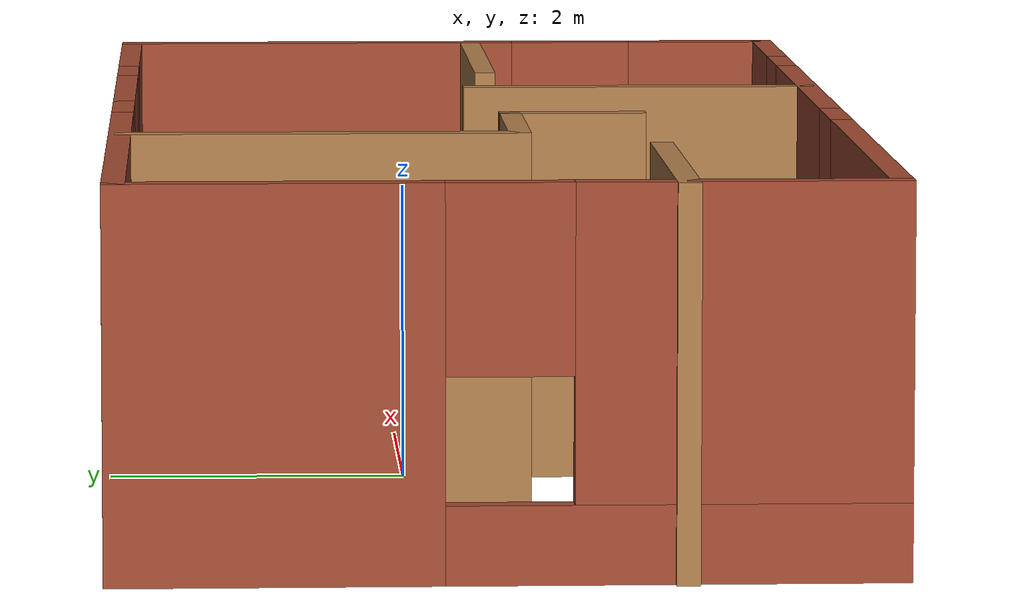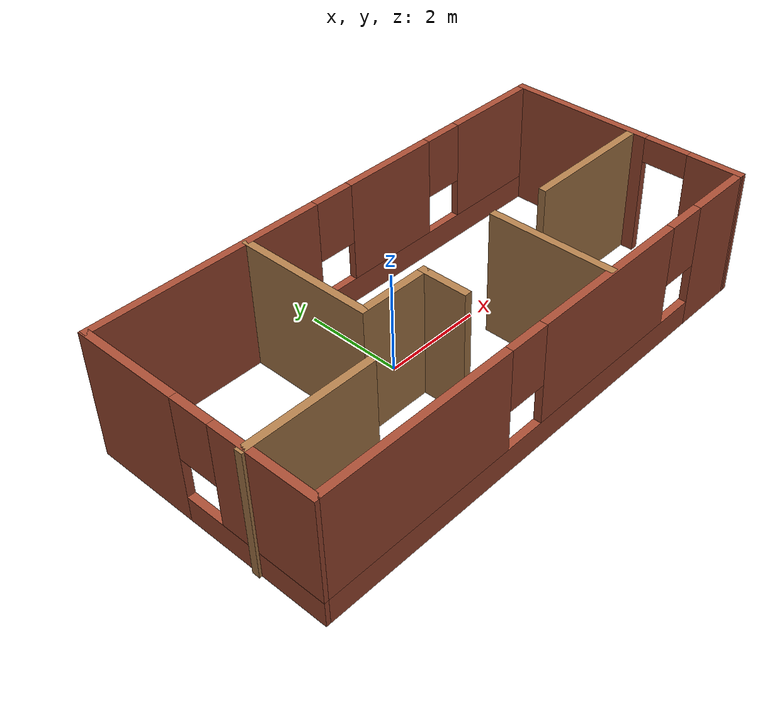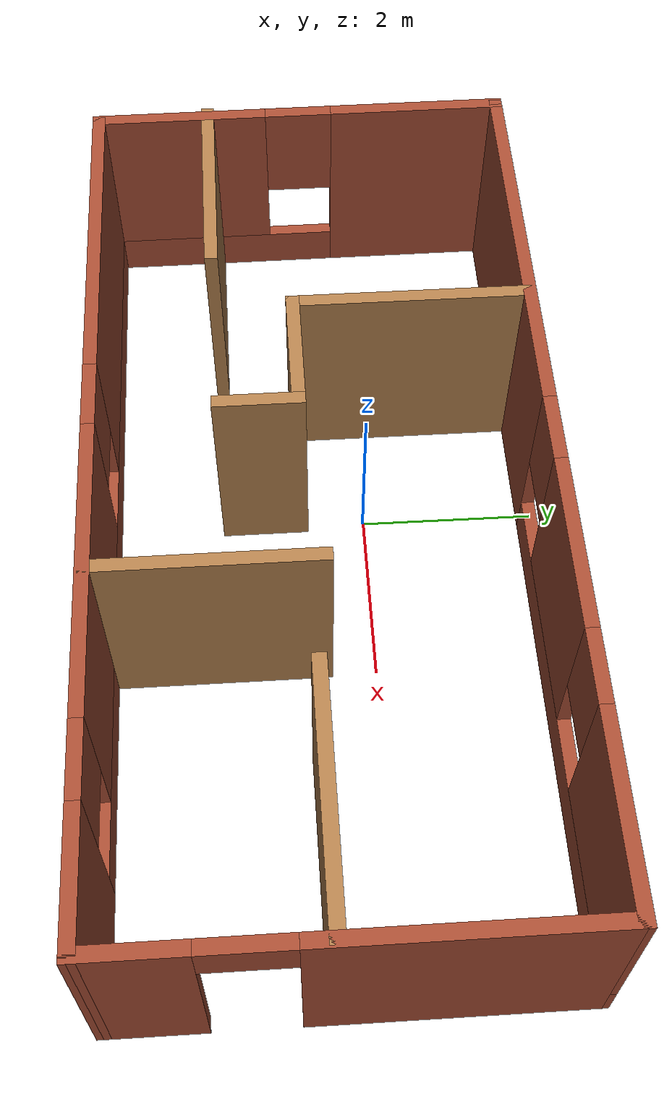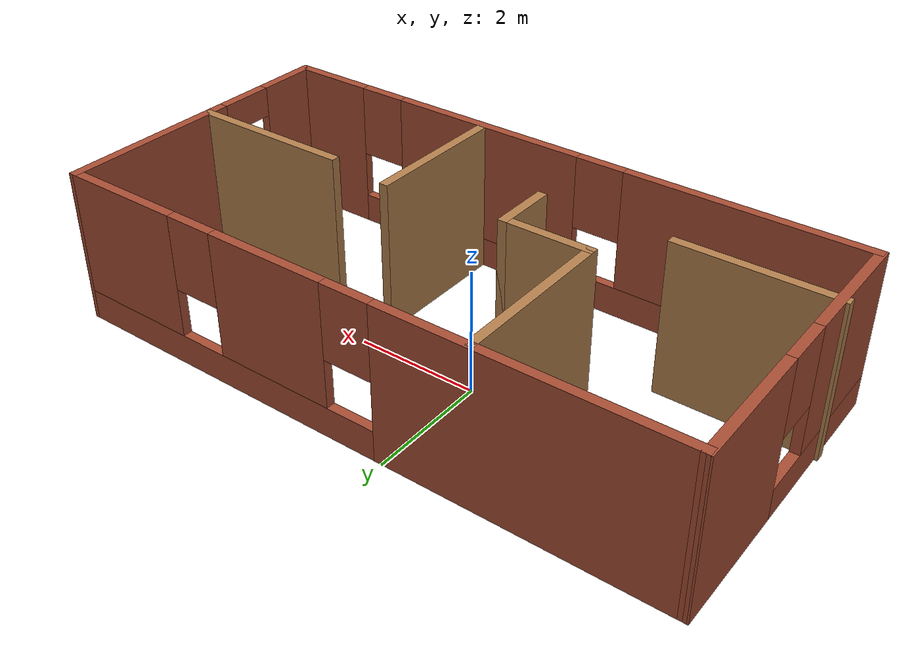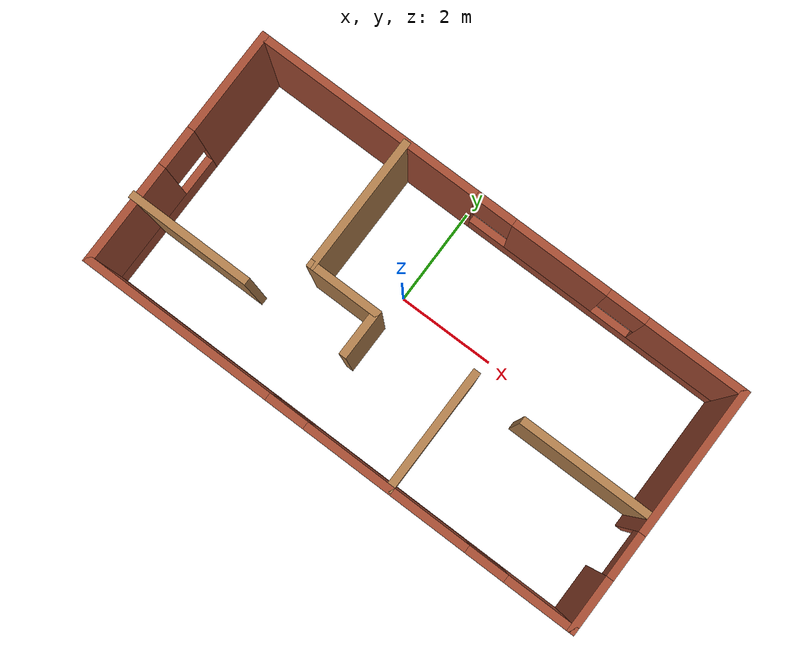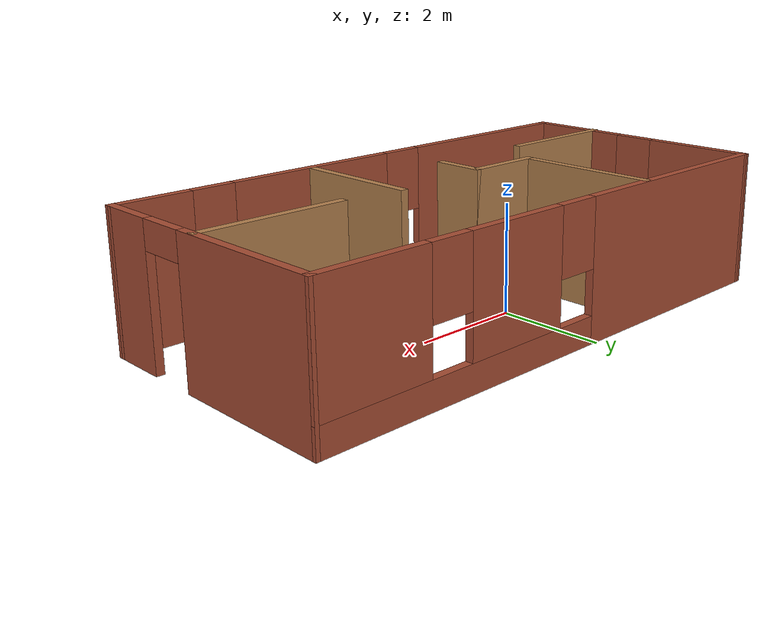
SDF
<?xml version='1.0'?>
<sdf version='1.7'>
  <model name='worlds'>
    <pose>0.621685 -0.516372 0 0 -0 0</pose>
    <link name='Wall_0'>
      <pose>-5.05689 0.005663 0 0 -0 -1.56554</pose>
      <visual name='Wall_0_Visual_0'>
        <pose>-1.44652 0 1.25 0 -0 0</pose>
        <geometry>
          <box>
            <size>2.10695 0.15 2.5</size>
          </box>
        </geometry>
        <material>
          <script>
            <uri>file://media/materials/scripts/gazebo.material</uri>
            <name>Gazebo/Bricks</name>
          </script>
          <ambient>1 1 1 1</ambient>
        </material>
        <meta>
          <layer>0</layer>
        </meta>
      </visual>
      <collision name='Wall_0_Collision_0'>
        <geometry>
          <box>
            <size>2.10695 0.15 2.5</size>
          </box>
        </geometry>
        <pose>-1.44652 0 1.25 0 -0 0</pose>
      </collision>
      <visual name='Wall_0_Visual_1'>
        <pose>1.05348 0 0.25 0 -0 0</pose>
        <geometry>
          <box>
            <size>2.89305 0.15 0.5</size>
          </box>
        </geometry>
        <material>
          <script>
            <uri>file://media/materials/scripts/gazebo.material</uri>
            <name>Gazebo/Bricks</name>
          </script>
          <ambient>1 1 1 1</ambient>
        </material>
        <meta>
          <layer>0</layer>
        </meta>
      </visual>
      <collision name='Wall_0_Collision_1'>
        <geometry>
          <box>
            <size>2.89305 0.15 0.5</size>
          </box>
        </geometry>
        <pose>1.05348 0 0.25 0 -0 0</pose>
      </collision>
      <visual name='Wall_0_Visual_2'>
        <pose>1.45348 0 1.5 0 -0 0</pose>
        <geometry>
          <box>
            <size>2.09305 0.15 2</size>
          </box>
        </geometry>
        <material>
          <script>
            <uri>file://media/materials/scripts/gazebo.material</uri>
            <name>Gazebo/Bricks</name>
          </script>
          <ambient>1 1 1 1</ambient>
        </material>
        <meta>
          <layer>0</layer>
        </meta>
      </visual>
      <collision name='Wall_0_Collision_2'>
        <geometry>
          <box>
            <size>2.09305 0.15 2</size>
          </box>
        </geometry>
        <pose>1.45348 0 1.5 0 -0 0</pose>
      </collision>
      <visual name='Wall_0_Visual_3'>
        <pose>0.006954 0 1.9 0 -0 0</pose>
        <geometry>
          <box>
            <size>0.8 0.15 1.2</size>
          </box>
        </geometry>
        <material>
          <script>
            <uri>file://media/materials/scripts/gazebo.material</uri>
            <name>Gazebo/Bricks</name>
          </script>
          <ambient>1 1 1 1</ambient>
        </material>
        <meta>
          <layer>0</layer>
        </meta>
      </visual>
      <collision name='Wall_0_Collision_3'>
        <geometry>
          <box>
            <size>0.8 0.15 1.2</size>
          </box>
        </geometry>
        <pose>0.006954 0 1.9 0 -0 0</pose>
      </collision>
    </link>
    <link name='Wall_12'>
      <collision name='Wall_12_Collision'>
        <geometry>
          <box>
            <size>2.75 0.15 2.5</size>
          </box>
        </geometry>
        <pose>0 0 1.25 0 -0 0</pose>
      </collision>
      <visual name='Wall_12_Visual'>
        <pose>0 0 1.25 0 -0 0</pose>
        <geometry>
          <box>
            <size>2.75 0.15 2.5</size>
          </box>
        </geometry>
        <material>
          <script>
            <uri>file://media/materials/scripts/gazebo.material</uri>
            <name>Gazebo/Wood</name>
          </script>
          <ambient>1 1 1 1</ambient>
        </material>
        <meta>
          <layer>0</layer>
        </meta>
      </visual>
      <pose>-1.98181 1.0858 0 0 -0 -1.5708</pose>
    </link>
    <link name='Wall_13'>
      <collision name='Wall_13_Collision'>
        <geometry>
          <box>
            <size>1.5 0.15 2.5</size>
          </box>
        </geometry>
        <pose>0 0 1.25 0 -0 0</pose>
      </collision>
      <visual name='Wall_13_Visual'>
        <pose>0 0 1.25 0 -0 0</pose>
        <geometry>
          <box>
            <size>1.5 0.15 2.5</size>
          </box>
        </geometry>
        <material>
          <script>
            <uri>file://media/materials/scripts/gazebo.material</uri>
            <name>Gazebo/Wood</name>
          </script>
          <ambient>1 1 1 1</ambient>
        </material>
        <meta>
          <layer>0</layer>
        </meta>
      </visual>
      <pose>-1.30681 -0.214205 0 0 -0 0</pose>
    </link>
    <link name='Wall_14'>
      <collision name='Wall_14_Collision'>
        <geometry>
          <box>
            <size>1 0.15 2.5</size>
          </box>
        </geometry>
        <pose>0 0 1.25 0 -0 0</pose>
      </collision>
      <visual name='Wall_14_Visual'>
        <pose>0 0 1.25 0 -0 0</pose>
        <geometry>
          <box>
            <size>1 0.15 2.5</size>
          </box>
        </geometry>
        <material>
          <script>
            <uri>file://media/materials/scripts/gazebo.material</uri>
            <name>Gazebo/Wood</name>
          </script>
          <ambient>1 1 1 1</ambient>
        </material>
        <meta>
          <layer>0</layer>
        </meta>
      </visual>
      <pose>-0.63181 -0.639205 0 0 -0 -1.5708</pose>
    </link>
    <link name='Wall_16'>
      <collision name='Wall_16_Collision'>
        <geometry>
          <box>
            <size>2.5 0.15 2.5</size>
          </box>
        </geometry>
        <pose>0 0 1.25 0 -0 0</pose>
      </collision>
      <visual name='Wall_16_Visual'>
        <pose>0 0 1.25 0 -0 0</pose>
        <geometry>
          <box>
            <size>2.5 0.15 2.5</size>
          </box>
        </geometry>
        <material>
          <script>
            <uri>file://media/materials/scripts/gazebo.material</uri>
            <name>Gazebo/Wood</name>
          </script>
          <ambient>1 1 1 1</ambient>
        </material>
        <meta>
          <layer>0</layer>
        </meta>
      </visual>
      <pose>-3.92701 -1.10149 0 0 -0 0</pose>
    </link>
    <link name='Wall_2'>
      <pose>0.02945 2.42485 0 0 -0 -0.00114</pose>
      <visual name='Wall_2_Visual_0'>
        <pose>-2.83096 0 1.25 0 -0 0</pose>
        <geometry>
          <box>
            <size>4.63303 0.15 2.5</size>
          </box>
        </geometry>
        <material>
          <script>
            <uri>file://media/materials/scripts/gazebo.material</uri>
            <name>Gazebo/Bricks</name>
          </script>
          <ambient>1 1 1 1</ambient>
        </material>
        <meta>
          <layer>0</layer>
        </meta>
      </visual>
      <collision name='Wall_2_Collision_0'>
        <geometry>
          <box>
            <size>4.63303 0.15 2.5</size>
          </box>
        </geometry>
        <pose>-2.83096 0 1.25 0 -0 0</pose>
      </collision>
      <visual name='Wall_2_Visual_1'>
        <pose>2.31652 0 0.25 0 -0 0</pose>
        <geometry>
          <box>
            <size>5.66193 0.15 0.5</size>
          </box>
        </geometry>
        <material>
          <script>
            <uri>file://media/materials/scripts/gazebo.material</uri>
            <name>Gazebo/Bricks</name>
          </script>
          <ambient>1 1 1 1</ambient>
        </material>
        <meta>
          <layer>0</layer>
        </meta>
      </visual>
      <collision name='Wall_2_Collision_1'>
        <geometry>
          <box>
            <size>5.66193 0.15 0.5</size>
          </box>
        </geometry>
        <pose>2.31652 0 0.25 0 -0 0</pose>
      </collision>
      <visual name='Wall_2_Visual_2'>
        <pose>1.27725 0 1.5 0 -0 0</pose>
        <geometry>
          <box>
            <size>1.9834 0.15 2</size>
          </box>
        </geometry>
        <material>
          <script>
            <uri>file://media/materials/scripts/gazebo.material</uri>
            <name>Gazebo/Bricks</name>
          </script>
          <ambient>1 1 1 1</ambient>
        </material>
        <meta>
          <layer>0</layer>
        </meta>
      </visual>
      <collision name='Wall_2_Collision_2'>
        <geometry>
          <box>
            <size>1.9834 0.15 2</size>
          </box>
        </geometry>
        <pose>1.27725 0 1.5 0 -0 0</pose>
      </collision>
      <visual name='Wall_2_Visual_3'>
        <pose>4.10822 0 1.5 0 -0 0</pose>
        <geometry>
          <box>
            <size>2.07853 0.15 2</size>
          </box>
        </geometry>
        <material>
          <script>
            <uri>file://media/materials/scripts/gazebo.material</uri>
            <name>Gazebo/Bricks</name>
          </script>
          <ambient>1 1 1 1</ambient>
        </material>
        <meta>
          <layer>0</layer>
        </meta>
      </visual>
      <collision name='Wall_2_Collision_3'>
        <geometry>
          <box>
            <size>2.07853 0.15 2</size>
          </box>
        </geometry>
        <pose>4.10822 0 1.5 0 -0 0</pose>
      </collision>
      <visual name='Wall_2_Visual_4'>
        <pose>-0.114446 0 1.9 0 -0 0</pose>
        <geometry>
          <box>
            <size>0.8 0.15 1.2</size>
          </box>
        </geometry>
        <material>
          <script>
            <uri>file://media/materials/scripts/gazebo.material</uri>
            <name>Gazebo/Bricks</name>
          </script>
          <ambient>1 1 1 1</ambient>
        </material>
        <meta>
          <layer>0</layer>
        </meta>
      </visual>
      <collision name='Wall_2_Collision_4'>
        <geometry>
          <box>
            <size>0.8 0.15 1.2</size>
          </box>
        </geometry>
        <pose>-0.114446 0 1.9 0 -0 0</pose>
      </collision>
      <visual name='Wall_2_Visual_5'>
        <pose>2.66895 0 1.9 0 -0 0</pose>
        <geometry>
          <box>
            <size>0.8 0.15 1.2</size>
          </box>
        </geometry>
        <material>
          <script>
            <uri>file://media/materials/scripts/gazebo.material</uri>
            <name>Gazebo/Bricks</name>
          </script>
          <ambient>1 1 1 1</ambient>
        </material>
        <meta>
          <layer>0</layer>
        </meta>
      </visual>
      <collision name='Wall_2_Collision_5'>
        <geometry>
          <box>
            <size>0.8 0.15 1.2</size>
          </box>
        </geometry>
        <pose>2.66895 0 1.9 0 -0 0</pose>
      </collision>
    </link>
    <link name='Wall_3'>
      <pose>5.10193 -0.005936 0 0 -0 -1.5708</pose>
      <visual name='Wall_3_Visual_0'>
        <pose>-1.0037 0 1.25 0 -0 0</pose>
        <geometry>
          <box>
            <size>2.9926 0.15 2.5</size>
          </box>
        </geometry>
        <material>
          <script>
            <uri>file://media/materials/scripts/gazebo.material</uri>
            <name>Gazebo/Bricks</name>
          </script>
          <ambient>1 1 1 1</ambient>
        </material>
        <meta>
          <layer>0</layer>
        </meta>
      </visual>
      <collision name='Wall_3_Collision_0'>
        <geometry>
          <box>
            <size>2.9926 0.15 2.5</size>
          </box>
        </geometry>
        <pose>-1.0037 0 1.25 0 -0 0</pose>
      </collision>
      <visual name='Wall_3_Visual_1'>
        <pose>1.9463 0 1.25 0 -0 0</pose>
        <geometry>
          <box>
            <size>1.1074 0.15 2.5</size>
          </box>
        </geometry>
        <material>
          <script>
            <uri>file://media/materials/scripts/gazebo.material</uri>
            <name>Gazebo/Bricks</name>
          </script>
          <ambient>1 1 1 1</ambient>
        </material>
        <meta>
          <layer>0</layer>
        </meta>
      </visual>
      <collision name='Wall_3_Collision_1'>
        <geometry>
          <box>
            <size>1.1074 0.15 2.5</size>
          </box>
        </geometry>
        <pose>1.9463 0 1.25 0 -0 0</pose>
      </collision>
      <visual name='Wall_3_Visual_2'>
        <pose>0.942604 0 2.25 0 -0 0</pose>
        <geometry>
          <box>
            <size>0.9 0.15 0.5</size>
          </box>
        </geometry>
        <material>
          <script>
            <uri>file://media/materials/scripts/gazebo.material</uri>
            <name>Gazebo/Bricks</name>
          </script>
          <ambient>1 1 1 1</ambient>
        </material>
        <meta>
          <layer>0</layer>
        </meta>
      </visual>
      <collision name='Wall_3_Collision_2'>
        <geometry>
          <box>
            <size>0.9 0.15 0.5</size>
          </box>
        </geometry>
        <pose>0.942604 0 2.25 0 -0 0</pose>
      </collision>
    </link>
    <link name='Wall_4'>
      <pose>0.042191 -2.42512 0 0 -0 3.14044</pose>
      <visual name='Wall_4_Visual_0'>
        <pose>-4.41668 0 1.25 0 -0 0</pose>
        <geometry>
          <box>
            <size>1.43612 0.15 2.5</size>
          </box>
        </geometry>
        <material>
          <script>
            <uri>file://media/materials/scripts/gazebo.material</uri>
            <name>Gazebo/Bricks</name>
          </script>
          <ambient>1 1 1 1</ambient>
        </material>
        <meta>
          <layer>0</layer>
        </meta>
      </visual>
      <collision name='Wall_4_Collision_0'>
        <geometry>
          <box>
            <size>1.43612 0.15 2.5</size>
          </box>
        </geometry>
        <pose>-4.41668 0 1.25 0 -0 0</pose>
      </collision>
      <visual name='Wall_4_Visual_1'>
        <pose>0.718061 0 0.25 0 -0 0</pose>
        <geometry>
          <box>
            <size>8.83336 0.15 0.5</size>
          </box>
        </geometry>
        <material>
          <script>
            <uri>file://media/materials/scripts/gazebo.material</uri>
            <name>Gazebo/Bricks</name>
          </script>
          <ambient>1 1 1 1</ambient>
        </material>
        <meta>
          <layer>0</layer>
        </meta>
      </visual>
      <collision name='Wall_4_Collision_1'>
        <geometry>
          <box>
            <size>8.83336 0.15 0.5</size>
          </box>
        </geometry>
        <pose>0.718061 0 0.25 0 -0 0</pose>
      </collision>
      <visual name='Wall_4_Visual_2'>
        <pose>-1.21852 0 1.5 0 -0 0</pose>
        <geometry>
          <box>
            <size>3.3602 0.15 2</size>
          </box>
        </geometry>
        <material>
          <script>
            <uri>file://media/materials/scripts/gazebo.material</uri>
            <name>Gazebo/Bricks</name>
          </script>
          <ambient>1 1 1 1</ambient>
        </material>
        <meta>
          <layer>0</layer>
        </meta>
      </visual>
      <collision name='Wall_4_Collision_2'>
        <geometry>
          <box>
            <size>3.3602 0.15 2</size>
          </box>
        </geometry>
        <pose>-1.21852 0 1.5 0 -0 0</pose>
      </collision>
      <visual name='Wall_4_Visual_3'>
        <pose>3.19816 0 1.5 0 -0 0</pose>
        <geometry>
          <box>
            <size>3.87316 0.15 2</size>
          </box>
        </geometry>
        <material>
          <script>
            <uri>file://media/materials/scripts/gazebo.material</uri>
            <name>Gazebo/Bricks</name>
          </script>
          <ambient>1 1 1 1</ambient>
        </material>
        <meta>
          <layer>0</layer>
        </meta>
      </visual>
      <collision name='Wall_4_Collision_3'>
        <geometry>
          <box>
            <size>3.87316 0.15 2</size>
          </box>
        </geometry>
        <pose>3.19816 0 1.5 0 -0 0</pose>
      </collision>
      <visual name='Wall_4_Visual_4'>
        <pose>-3.29862 0 1.9 0 -0 0</pose>
        <geometry>
          <box>
            <size>0.8 0.15 1.2</size>
          </box>
        </geometry>
        <material>
          <script>
            <uri>file://media/materials/scripts/gazebo.material</uri>
            <name>Gazebo/Bricks</name>
          </script>
          <ambient>1 1 1 1</ambient>
        </material>
        <meta>
          <layer>0</layer>
        </meta>
      </visual>
      <collision name='Wall_4_Collision_4'>
        <geometry>
          <box>
            <size>0.8 0.15 1.2</size>
          </box>
        </geometry>
        <pose>-3.29862 0 1.9 0 -0 0</pose>
      </collision>
      <visual name='Wall_4_Visual_5'>
        <pose>0.861581 0 1.9 0 -0 0</pose>
        <geometry>
          <box>
            <size>0.8 0.15 1.2</size>
          </box>
        </geometry>
        <material>
          <script>
            <uri>file://media/materials/scripts/gazebo.material</uri>
            <name>Gazebo/Bricks</name>
          </script>
          <ambient>1 1 1 1</ambient>
        </material>
        <meta>
          <layer>0</layer>
        </meta>
      </visual>
      <collision name='Wall_4_Collision_5'>
        <geometry>
          <box>
            <size>0.8 0.15 1.2</size>
          </box>
        </geometry>
        <pose>0.861581 0 1.9 0 -0 0</pose>
      </collision>
    </link>
    <link name='Wall_7'>
      <collision name='Wall_7_Collision'>
        <geometry>
          <box>
            <size>2.5 0.15 2.5</size>
          </box>
        </geometry>
        <pose>0 0 1.25 0 -0 0</pose>
      </collision>
      <visual name='Wall_7_Visual'>
        <pose>0 0 1.25 0 -0 0</pose>
        <geometry>
          <box>
            <size>2.5 0.15 2.5</size>
          </box>
        </geometry>
        <material>
          <script>
            <uri>file://media/materials/scripts/gazebo.material</uri>
            <name>Gazebo/Wood</name>
          </script>
          <ambient>1 1 1 1</ambient>
        </material>
        <meta>
          <layer>0</layer>
        </meta>
      </visual>
      <pose>1.32099 -1.2222 0 0 -0 1.5708</pose>
    </link>
    <link name='Wall_9'>
      <collision name='Wall_9_Collision'>
        <geometry>
          <box>
            <size>2.75 0.15 2.5</size>
          </box>
        </geometry>
        <pose>0 0 1.25 0 -0 0</pose>
      </collision>
      <visual name='Wall_9_Visual'>
        <pose>0 0 1.25 0 -0 0</pose>
        <geometry>
          <box>
            <size>2.75 0.15 2.5</size>
          </box>
        </geometry>
        <material>
          <script>
            <uri>file://media/materials/scripts/gazebo.material</uri>
            <name>Gazebo/Wood</name>
          </script>
          <ambient>1 1 1 1</ambient>
        </material>
        <meta>
          <layer>0</layer>
        </meta>
      </visual>
      <pose>3.77755 -0.176724 0 0 -0 3.14159</pose>
    </link>
    <static>1</static>
  </model>
</sdf>
